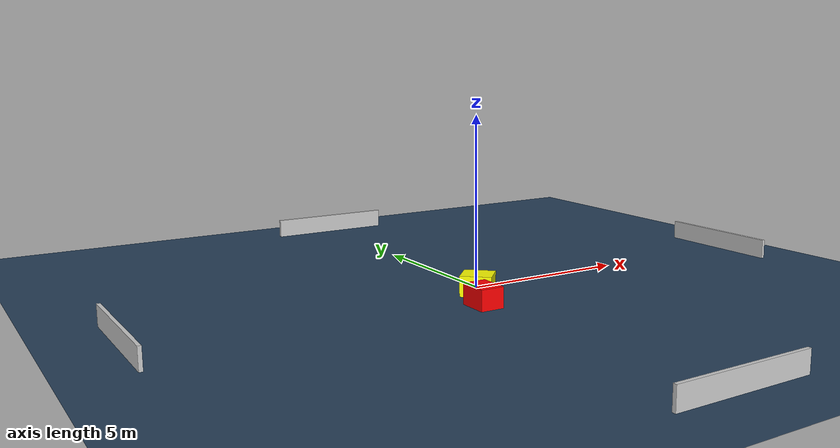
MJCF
<?xml version="1.0" ?>
<mujoco model="generated_environment">
  <option timestep="0.01" integrator="RK4" cone="elliptic"/>
  <default>
    <geom density="1"/>
  </default>
  <asset>
    <texture builtin="gradient" height="3072" name="skybox" rgb1="0.3 0.5 0.7" rgb2="0 0 0" type="skybox" width="512"/>
    <texture builtin="checker" height="300" name="groundplane" rgb1="0.2 0.3 0.4" rgb2="0.1 0.2 0.3" type="2d" width="300"/>
    <material name="groundplane" reflectance="0.2" texrepeat="5 5" texture="groundplane"/>
  </asset>
  <worldbody>
    <light dir="0 0 -1" directional="true" pos="0 0 1.5"/>
    <geom condim="3" friction="0.5 0.005 0.001" material="groundplane" name="floor" pos="0 0 0" size="0 0 0.05" type="plane"/>
    <body name="walls">
      <geom name="wall_1" condim="4" pos="-10.0 0.0 0.3" rgba="0.800000011920929 0.800000011920929 0.800000011920929 1.0" size="0.05 2.0 0.3" type="box"/>
      <geom name="wall_2" condim="4" pos="10.0 0.0 0.3" rgba="0.800000011920929 0.800000011920929 0.800000011920929 1.0" size="0.05 2.0 0.3" type="box"/>
      <geom name="wall_3" condim="4" pos="0.0 -10.0 0.3" rgba="0.800000011920929 0.800000011920929 0.800000011920929 1.0" size="2.0 0.05 0.3" type="box"/>
      <geom name="wall_4" condim="4" pos="0.0 10.0 0.3" rgba="0.800000011920929 0.800000011920929 0.800000011920929 1.0" size="2.0 0.05 0.3" type="box"/>
    </body>
    <body name="robot">
      <joint name="joint_x" type="slide" pos="0 0 0" axis="1 0 0"/>
      <joint name="joint_y" type="slide" pos="0 0 0" axis="0 1 0"/>
      <geom name="robot" type="cylinder" pos="0.0 0.0 0.2" size="0.2 0.2 0.0" mass="5.0" friction="1.0 0.005 0.0001" condim="4" rgba="1.0 1.0 0.0 1.0"/>
    </body>
    <body name="obstacle_1_movable">
      <geom name="obstacle_1_movable" condim="4" pos="-0.3507543964456941 -0.6214947534924222 0.3" euler="0 0 47.26055009482711" friction="0.0 0.005 0.001" rgba="1.0 1.0 0.0 1.0" size="0.39566304361546106 0.4549350936975853 0.3" type="box" mass="0.1"/>
      <joint type="free"/>
    </body>
    <body name="obstacle_2_static">
      <geom name="obstacle_2_static" condim="4" pos="-0.9228169428173297 -1.7559133289455073 0.3" euler="0 0 179.34297183239943" friction="0.0 0.005 0.001" rgba="1.0 0.0 0.0 1.0" size="0.35168833919492115 0.4626730758851813 0.3" type="box"/>
    </body>
  </worldbody>
  <actuator>
    <motor name="actuator_x" joint="joint_x" gear="1" ctrlrange="-1 1"/>
    <motor name="actuator_y" joint="joint_y" gear="1" ctrlrange="-1 1"/>
  </actuator>
</mujoco>
